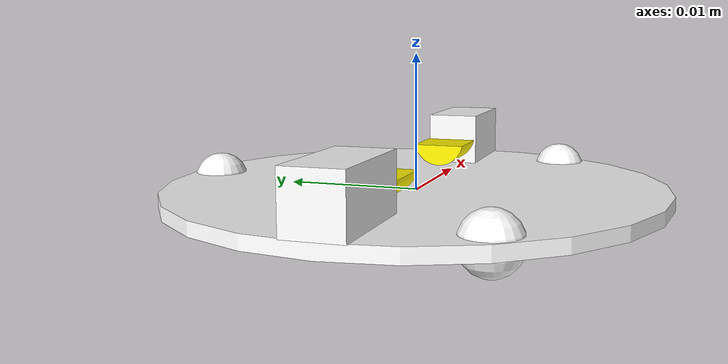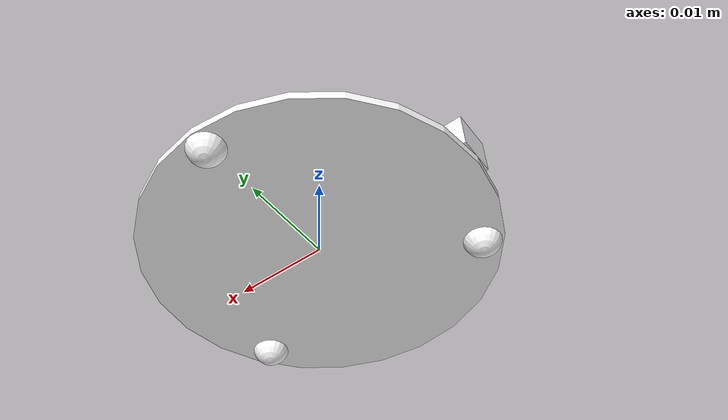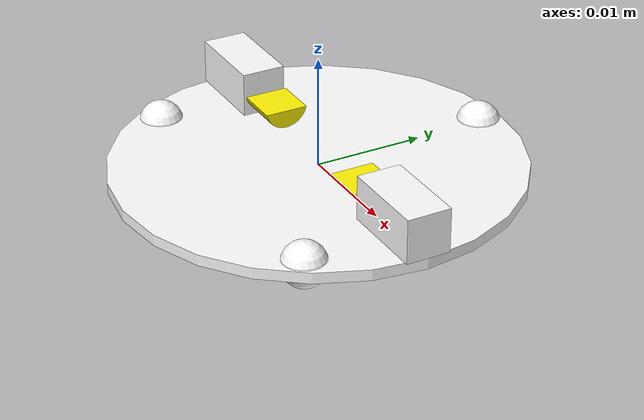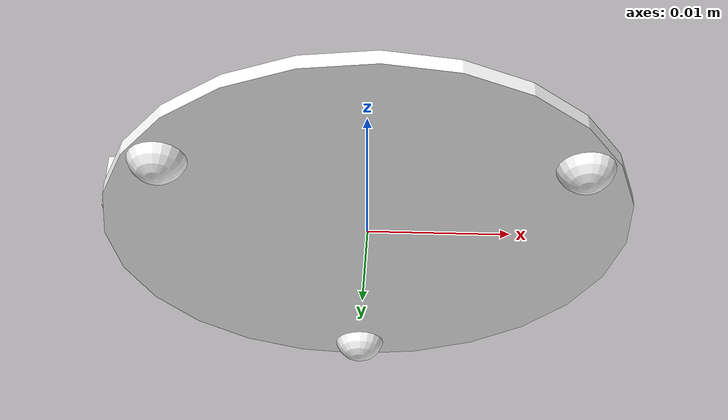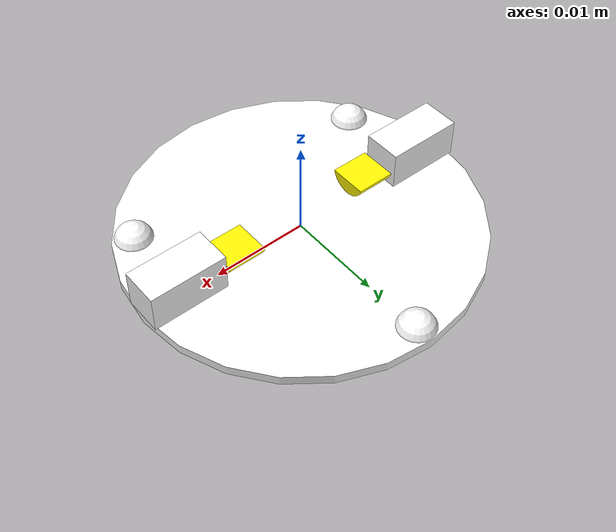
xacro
<?xml version="1.0"?>

<robot xmlns:xacro="http://www.ros.org/wiki/xacro" name="microrobot">
  <!-- Geometric Properties -->
  <xacro:property name="platform_diameter" value="0.0365"/>
  <xacro:property name="platform_thickness" value="0.001"/>
  <xacro:property name="triangle_side" value="0.0292"/>
  <xacro:property name="support_diameter" value="0.002"/>
  <xacro:property name="motor_depth" value="0.008"/>
  <xacro:property name="eccentric_load_length" value="0.0044"/>
  <xacro:property name="distance_between_motors" value="0.0117"/>

  <!-- Physical Properties -->
  <xacro:property name="platform_mass" value="0.085"/>
  <xacro:property name="support_mass" value="0.05"/>
  <xacro:property name="motor_mass" value="0.01"/>
  <!-- All of the above add to 0.12 kg -->
  <xacro:property name="eccenter_mass" value="0.00021"/>

  <material name="white">
    <color rgba="1 1 1 1"/>
  </material>

  <material name="gold">
    <color rgba="1 0.95 0 1"/>
  </material>

  <link name="dummy_link">
  </link>

  <joint name="dl_to_platform" type="fixed">
    <parent link="dummy_link"/>
    <child link="platform_link"/>
  </joint>

  <link name="platform_link">
    <visual>
      <geometry>
        <cylinder length="${platform_thickness}" radius="${platform_diameter/2}"/>
      </geometry>
      <material name="white"/>
    </visual>
    <collision>
      <geometry>
        <cylinder length="${platform_thickness}" radius="${platform_diameter/2}"/>
      </geometry>
    </collision>
    <inertial>
      <mass value="${platform_mass}"/>
      <inertia ixx="${1/12*platform_mass*(3*(platform_diameter/2)**2 + platform_thickness**2)}"
               ixy="0.0" ixz="0.0"
               iyy="${1/12*platform_mass*(3*(platform_diameter/2)**2 + platform_thickness**2)}"
               iyz="0.0"
               izz="${1/12*platform_mass*(platform_diameter/2)**2}" />
    </inertial>
  </link>

  <link name="support_A">
    <visual>
      <geometry>
        <sphere radius="${support_diameter}"/>
      </geometry>
      <material name="white"/>
      <origin xyz=" ${triangle_side/2 - support_diameter/2}
                    ${-sin(radians(30)) * (platform_diameter/2 - support_diameter/2)}
                    0"/>
    </visual>
    <collision>
      <geometry>
        <sphere radius="${support_diameter}"/>
      </geometry>
    </collision>
    <inertial>
      <mass value="${support_mass}"/>
      <inertia ixx="${2/5*support_mass*(support_diameter/2)**2}"
               ixy="0.0" ixz="0.0"
               iyy="${2/5*support_mass*(support_diameter/2)**2}"
               iyz="0.0"
               izz="${2/5*support_mass*(support_diameter/2)**2}" />
    </inertial>
  </link>

  <joint name="platform_to_support_A" type="fixed">
    <parent link="platform_link"/>
    <child link="support_A"/>
  </joint>

  <link name="support_B">
    <visual>
      <geometry>
        <sphere radius="${support_diameter}"/>
      </geometry>
      <material name="white"/>
      <origin xyz="0 ${platform_diameter/2 - support_diameter} 0"/>
    </visual>
    <collision>
      <geometry>
        <sphere radius="${support_diameter}"/>
      </geometry>
    </collision>
    <inertial>
      <mass value="${support_mass}"/>
      <inertia ixx="${2/5*support_mass*(support_diameter/2)**2}"
               ixy="0.0" ixz="0.0"
               iyy="${2/5*support_mass*(support_diameter/2)**2}"
               iyz="0.0"
               izz="${2/5*support_mass*(support_diameter/2)**2}" />
    </inertial>
  </link>

  <joint name="platform_to_support_B" type="fixed">
    <parent link="platform_link"/>
    <child link="support_B"/>
  </joint>

  <link name="support_C">
    <visual>
      <geometry>
        <sphere radius="${support_diameter}"/>
      </geometry>
      <material name="white"/>
      <origin xyz=" ${-triangle_side/2 + support_diameter/2}
                    ${-sin(radians(30)) * (platform_diameter/2 - support_diameter/2)}
                    0"/>
    </visual>
    <collision>
      <geometry>
        <sphere radius="${support_diameter}"/>
      </geometry>
    </collision>
    <inertial>
      <mass value="${support_mass}"/>
      <inertia ixx="${2/5*support_mass*(support_diameter/2)**2}"
               ixy="0.0" ixz="0.0"
               iyy="${2/5*support_mass*(support_diameter/2)**2}"
               iyz="0.0"
               izz="${2/5*support_mass*(support_diameter/2)**2}" />
    </inertial>
  </link>

  <joint name="platform_to_support_C" type="fixed">
    <parent link="platform_link"/>
    <child link="support_C"/>
  </joint>

  <link name="left_motor">
    <visual>
      <geometry>
        <box size="${motor_depth} ${motor_depth/2} ${motor_depth/2}"/>
      </geometry>
      <material name="white"/>
      <origin xyz=" ${-(distance_between_motors/2 + motor_depth/2 + eccentric_load_length)}
                    0
                    ${motor_depth/4 + platform_thickness/2}"/>
    </visual>
    <collision>
      <geometry>
        <box size="${motor_depth} ${motor_depth/2} ${motor_depth/2}"/>
      </geometry>
    </collision>
    <inertial>
      <mass value="${motor_mass}"/>
      <inertia ixx="${1/12*motor_mass*(motor_depth**2 + (motor_depth/2)**2)}"
               ixy="0.0" ixz="0.0"
               iyy="${1/12*motor_mass*(motor_depth**2 + (motor_depth/2)**2)}"
               iyz="0.0"
               izz="${1/12*motor_mass*(motor_depth**2 + (motor_depth/2)**2)}" />
    </inertial>
  </link>

  <joint name="platform_to_left_motor" type="fixed">
    <parent link="platform_link"/>
    <child link="left_motor"/>
  </joint>

  <link name="left_eccenter">
    <visual>
      <geometry>
        <mesh filename="package://microrobot/meshes/test.stl"
              scale= "0.05 0.05 0.05"/>
      </geometry>
      <material name="gold"/>
      <origin rpy= "0 0 0"
              xyz=" 0
                    0
                    0"/>
    </visual>
    <collision>
      <geometry>
         <mesh filename="package://microrobot/meshes/test.stl"
              scale= "0.05 0.05 0.05"/>
      </geometry>
    </collision>
    <inertial>
      <mass value="${eccenter_mass}"/>
      <inertia  ixx="0.888081" ixy="0.0" ixz="0.0"
                iyy="1.305504" iyz="0.0" izz="0.627865"/>
    </inertial>
  </link>

  <joint name="left_motor_to_eccenter" type="continuous">
    <parent link="left_motor"/>
    <child link="left_eccenter"/>
    <axis xyz="1 0 0"/>
    <origin xyz=" ${-distance_between_motors/2}
                  0
                  ${motor_depth/4 + platform_thickness/2}"/>
  </joint>

  <link name="right_motor">
    <visual>
      <geometry>
        <box size="${motor_depth} ${motor_depth/2} ${motor_depth/2}"/>
      </geometry>
      <material name="white"/>
      <origin xyz=" ${distance_between_motors/2 + motor_depth/2 + eccentric_load_length}
                    0
                    ${motor_depth/4 + platform_thickness/2}"/>
    </visual>
    <collision>
      <geometry>
         <box size="${motor_depth} ${motor_depth/2} ${motor_depth/2}"/>
      </geometry>
    </collision>
    <inertial>
      <mass value="${motor_mass}"/>
      <inertia ixx="${1/12*motor_mass*(motor_depth**2 + (motor_depth/2)**2)}"
               ixy="0.0" ixz="0.0"
               iyy="${1/12*motor_mass*(motor_depth**2 + (motor_depth/2)**2)}"
               iyz="0.0"
               izz="${1/12*motor_mass*(motor_depth**2 + (motor_depth/2)**2)}" />
    </inertial>
  </link>

  <joint name="platform_to_right_motor" type="fixed">
    <parent link="platform_link"/>
    <child link="right_motor"/>
  </joint>

   <link name="right_eccenter">
    <visual>
      <geometry>
        <mesh filename="package://microrobot/meshes/test.stl"
              scale= "0.05 0.05 0.05"/>
      </geometry>
      <material name="gold"/>
      <origin rpy= "0 0 ${radians(180)}"
              xyz=" 0
                    0
                    0"/>
    </visual>
    <collision>
      <geometry>
         <mesh filename="package://microrobot/meshes/test.stl"
              scale= "0.05 0.05 0.05"/>
      </geometry>
    </collision>
    <inertial>
      <mass value="${eccenter_mass}"/>
      <inertia  ixx="0.888081" ixy="0.0" ixz="0.0"
                iyy="1.305504" iyz="0.0" izz="0.627865"/>
    </inertial>
  </link>

  <joint name="right_motor_to_eccenter" type="continuous">
    <parent link="right_motor"/>
    <child link="right_eccenter"/>
    <axis xyz="1 0 0"/>
    <origin xyz=" ${distance_between_motors/2}
                  0
                  ${motor_depth/4 + platform_thickness/2}"/>
  </joint>
</robot>
